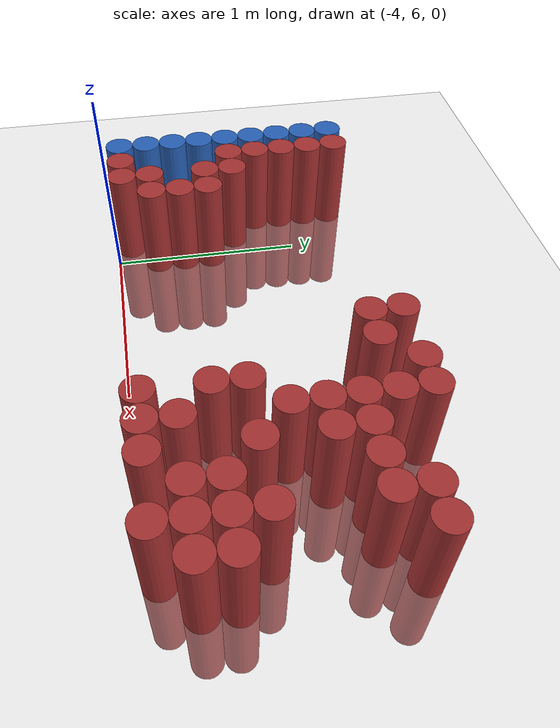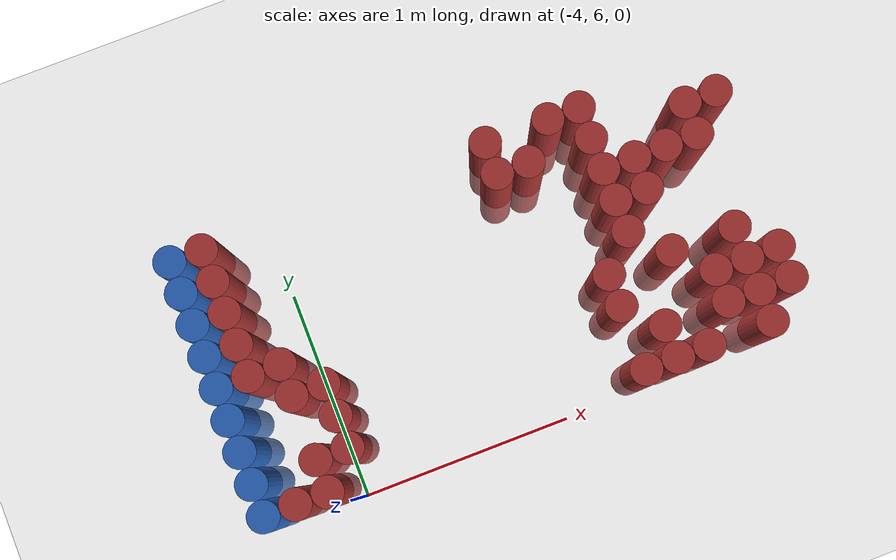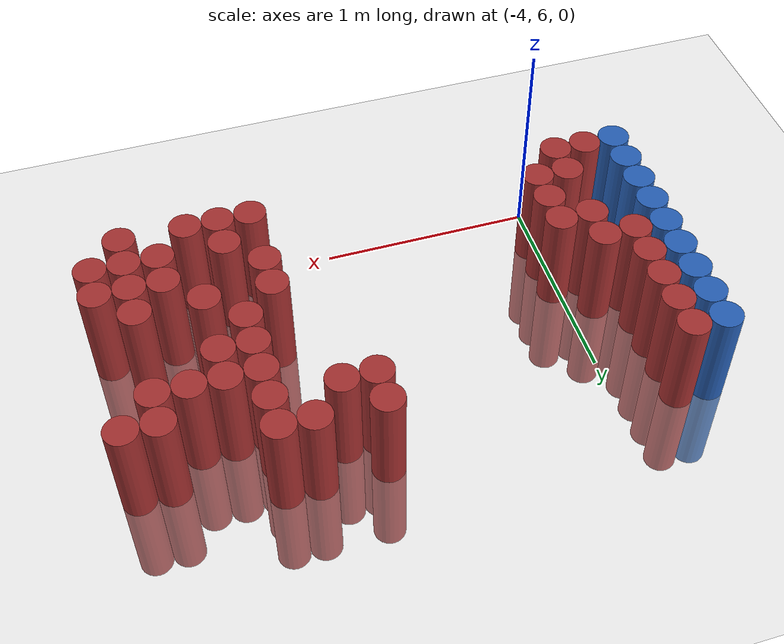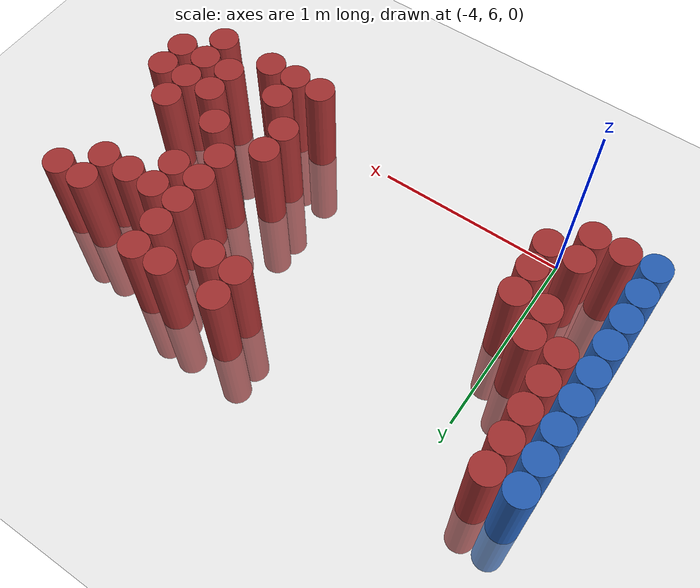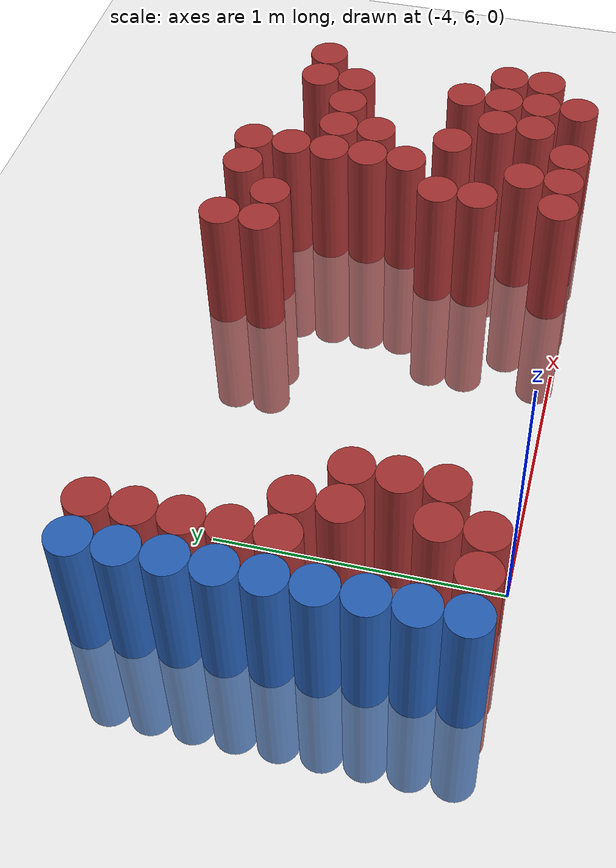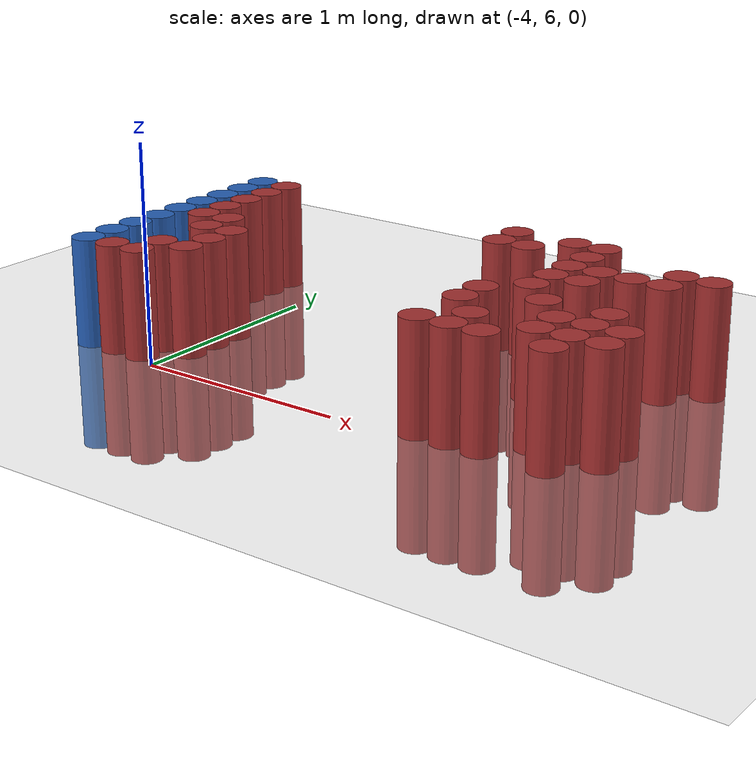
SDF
<sdf version="1.6">
 <world name="default">
  <model name="ground_plane">
   <static>1</static>
   <link name="link">
    <collision name="collision">
     <geometry><plane><normal>0 0 1</normal><size>100 100</size></plane></geometry>
     <surface><friction><ode><mu>100</mu><mu2>50</mu2></ode></friction></surface>
    </collision>
    <visual name="visual">
     <cast_shadows>0</cast_shadows>
     <geometry><plane><normal>0 0 1</normal><size>100 100</size></plane></geometry>
     <material>
      <script><uri>file://media/materials/scripts/gazebo.material</uri><name>Gazebo/Grey</name></script>
     </material>
    </visual>
   </link>
  </model>
  <model name="unit_cylinder_102">
   <static>1</static>
   <pose>-4.425000 6.075000 0.000000 0.000000 0.000000 0.000000</pose>
   <link name="link">
    <inertial>
     <mass>1</mass>
     <inertia><ixx>0.145833</ixx><ixy>0</ixy><ixz>0</ixz><iyy>0.145833</iyy><iyz>0</iyz><izz>0.125</izz></inertia>
    </inertial>
    <collision name="collision">
     <geometry><cylinder><radius>0.075000</radius><length>1</length></cylinder></geometry>
    </collision>
    <visual name="visual">
     <geometry><cylinder><radius>0.075000</radius><length>1</length></cylinder></geometry>
     <material>
      <ambient>0.152000 0.379000 0.720000 1</ambient>
      <diffuse>0.152000 0.379000 0.720000 1</diffuse>
     </material>
     <material>
      <script><name>Gazebo/Grey</name><uri>file://media/materials/scripts/gazebo.material</uri></script>
     </material>
    </visual>
   </link>
  </model>
  <model name="unit_cylinder_103">
   <static>1</static>
   <pose>-4.425000 6.225000 0.000000 0.000000 0.000000 0.000000</pose>
   <link name="link">
    <inertial>
     <mass>1</mass>
     <inertia><ixx>0.145833</ixx><ixy>0</ixy><ixz>0</ixz><iyy>0.145833</iyy><iyz>0</iyz><izz>0.125</izz></inertia>
    </inertial>
    <collision name="collision">
     <geometry><cylinder><radius>0.075000</radius><length>1</length></cylinder></geometry>
    </collision>
    <visual name="visual">
     <geometry><cylinder><radius>0.075000</radius><length>1</length></cylinder></geometry>
     <material>
      <ambient>0.152000 0.379000 0.720000 1</ambient>
      <diffuse>0.152000 0.379000 0.720000 1</diffuse>
     </material>
     <material>
      <script><name>Gazebo/Grey</name><uri>file://media/materials/scripts/gazebo.material</uri></script>
     </material>
    </visual>
   </link>
  </model>
  <model name="unit_cylinder_104">
   <static>1</static>
   <pose>-4.425000 6.375000 0.000000 0.000000 0.000000 0.000000</pose>
   <link name="link">
    <inertial>
     <mass>1</mass>
     <inertia><ixx>0.145833</ixx><ixy>0</ixy><ixz>0</ixz><iyy>0.145833</iyy><iyz>0</iyz><izz>0.125</izz></inertia>
    </inertial>
    <collision name="collision">
     <geometry><cylinder><radius>0.075000</radius><length>1</length></cylinder></geometry>
    </collision>
    <visual name="visual">
     <geometry><cylinder><radius>0.075000</radius><length>1</length></cylinder></geometry>
     <material>
      <ambient>0.152000 0.379000 0.720000 1</ambient>
      <diffuse>0.152000 0.379000 0.720000 1</diffuse>
     </material>
     <material>
      <script><name>Gazebo/Grey</name><uri>file://media/materials/scripts/gazebo.material</uri></script>
     </material>
    </visual>
   </link>
  </model>
  <model name="unit_cylinder_105">
   <static>1</static>
   <pose>-4.425000 6.525000 0.000000 0.000000 0.000000 0.000000</pose>
   <link name="link">
    <inertial>
     <mass>1</mass>
     <inertia><ixx>0.145833</ixx><ixy>0</ixy><ixz>0</ixz><iyy>0.145833</iyy><iyz>0</iyz><izz>0.125</izz></inertia>
    </inertial>
    <collision name="collision">
     <geometry><cylinder><radius>0.075000</radius><length>1</length></cylinder></geometry>
    </collision>
    <visual name="visual">
     <geometry><cylinder><radius>0.075000</radius><length>1</length></cylinder></geometry>
     <material>
      <ambient>0.152000 0.379000 0.720000 1</ambient>
      <diffuse>0.152000 0.379000 0.720000 1</diffuse>
     </material>
     <material>
      <script><name>Gazebo/Grey</name><uri>file://media/materials/scripts/gazebo.material</uri></script>
     </material>
    </visual>
   </link>
  </model>
  <model name="unit_cylinder_106">
   <static>1</static>
   <pose>-4.425000 6.675000 0.000000 0.000000 0.000000 0.000000</pose>
   <link name="link">
    <inertial>
     <mass>1</mass>
     <inertia><ixx>0.145833</ixx><ixy>0</ixy><ixz>0</ixz><iyy>0.145833</iyy><iyz>0</iyz><izz>0.125</izz></inertia>
    </inertial>
    <collision name="collision">
     <geometry><cylinder><radius>0.075000</radius><length>1</length></cylinder></geometry>
    </collision>
    <visual name="visual">
     <geometry><cylinder><radius>0.075000</radius><length>1</length></cylinder></geometry>
     <material>
      <ambient>0.152000 0.379000 0.720000 1</ambient>
      <diffuse>0.152000 0.379000 0.720000 1</diffuse>
     </material>
     <material>
      <script><name>Gazebo/Grey</name><uri>file://media/materials/scripts/gazebo.material</uri></script>
     </material>
    </visual>
   </link>
  </model>
  <model name="unit_cylinder_107">
   <static>1</static>
   <pose>-4.425000 6.825000 0.000000 0.000000 0.000000 0.000000</pose>
   <link name="link">
    <inertial>
     <mass>1</mass>
     <inertia><ixx>0.145833</ixx><ixy>0</ixy><ixz>0</ixz><iyy>0.145833</iyy><iyz>0</iyz><izz>0.125</izz></inertia>
    </inertial>
    <collision name="collision">
     <geometry><cylinder><radius>0.075000</radius><length>1</length></cylinder></geometry>
    </collision>
    <visual name="visual">
     <geometry><cylinder><radius>0.075000</radius><length>1</length></cylinder></geometry>
     <material>
      <ambient>0.152000 0.379000 0.720000 1</ambient>
      <diffuse>0.152000 0.379000 0.720000 1</diffuse>
     </material>
     <material>
      <script><name>Gazebo/Grey</name><uri>file://media/materials/scripts/gazebo.material</uri></script>
     </material>
    </visual>
   </link>
  </model>
  <model name="unit_cylinder_108">
   <static>1</static>
   <pose>-4.425000 6.975000 0.000000 0.000000 0.000000 0.000000</pose>
   <link name="link">
    <inertial>
     <mass>1</mass>
     <inertia><ixx>0.145833</ixx><ixy>0</ixy><ixz>0</ixz><iyy>0.145833</iyy><iyz>0</iyz><izz>0.125</izz></inertia>
    </inertial>
    <collision name="collision">
     <geometry><cylinder><radius>0.075000</radius><length>1</length></cylinder></geometry>
    </collision>
    <visual name="visual">
     <geometry><cylinder><radius>0.075000</radius><length>1</length></cylinder></geometry>
     <material>
      <ambient>0.152000 0.379000 0.720000 1</ambient>
      <diffuse>0.152000 0.379000 0.720000 1</diffuse>
     </material>
     <material>
      <script><name>Gazebo/Grey</name><uri>file://media/materials/scripts/gazebo.material</uri></script>
     </material>
    </visual>
   </link>
  </model>
  <model name="unit_cylinder_109">
   <static>1</static>
   <pose>-4.425000 7.125000 0.000000 0.000000 0.000000 0.000000</pose>
   <link name="link">
    <inertial>
     <mass>1</mass>
     <inertia><ixx>0.145833</ixx><ixy>0</ixy><ixz>0</ixz><iyy>0.145833</iyy><iyz>0</iyz><izz>0.125</izz></inertia>
    </inertial>
    <collision name="collision">
     <geometry><cylinder><radius>0.075000</radius><length>1</length></cylinder></geometry>
    </collision>
    <visual name="visual">
     <geometry><cylinder><radius>0.075000</radius><length>1</length></cylinder></geometry>
     <material>
      <ambient>0.152000 0.379000 0.720000 1</ambient>
      <diffuse>0.152000 0.379000 0.720000 1</diffuse>
     </material>
     <material>
      <script><name>Gazebo/Grey</name><uri>file://media/materials/scripts/gazebo.material</uri></script>
     </material>
    </visual>
   </link>
  </model>
  <model name="unit_cylinder_110">
   <static>1</static>
   <pose>-4.425000 7.275000 0.000000 0.000000 0.000000 0.000000</pose>
   <link name="link">
    <inertial>
     <mass>1</mass>
     <inertia><ixx>0.145833</ixx><ixy>0</ixy><ixz>0</ixz><iyy>0.145833</iyy><iyz>0</iyz><izz>0.125</izz></inertia>
    </inertial>
    <collision name="collision">
     <geometry><cylinder><radius>0.075000</radius><length>1</length></cylinder></geometry>
    </collision>
    <visual name="visual">
     <geometry><cylinder><radius>0.075000</radius><length>1</length></cylinder></geometry>
     <material>
      <ambient>0.152000 0.379000 0.720000 1</ambient>
      <diffuse>0.152000 0.379000 0.720000 1</diffuse>
     </material>
     <material>
      <script><name>Gazebo/Grey</name><uri>file://media/materials/scripts/gazebo.material</uri></script>
     </material>
    </visual>
   </link>
  </model>
  <model name="unit_cylinder_129">
   <static>1</static>
   <pose>-4.275000 6.075000 0.000000 0.000000 0.000000 0.000000</pose>
   <link name="link">
    <inertial>
     <mass>1</mass>
     <inertia><ixx>0.145833</ixx><ixy>0</ixy><ixz>0</ixz><iyy>0.145833</iyy><iyz>0</iyz><izz>0.125</izz></inertia>
    </inertial>
    <collision name="collision">
     <geometry><cylinder><radius>0.075000</radius><length>1</length></cylinder></geometry>
    </collision>
    <visual name="visual">
     <geometry><cylinder><radius>0.075000</radius><length>1</length></cylinder></geometry>
     <material>
      <ambient>0.648000 0.192000 0.192000 1</ambient>
      <diffuse>0.648000 0.192000 0.192000 1</diffuse>
     </material>
     <material>
      <script><name>Gazebo/Grey</name><uri>file://media/materials/scripts/gazebo.material</uri></script>
     </material>
    </visual>
   </link>
  </model>
  <model name="unit_cylinder_130">
   <static>1</static>
   <pose>-4.275000 6.675000 0.000000 0.000000 0.000000 0.000000</pose>
   <link name="link">
    <inertial>
     <mass>1</mass>
     <inertia><ixx>0.145833</ixx><ixy>0</ixy><ixz>0</ixz><iyy>0.145833</iyy><iyz>0</iyz><izz>0.125</izz></inertia>
    </inertial>
    <collision name="collision">
     <geometry><cylinder><radius>0.075000</radius><length>1</length></cylinder></geometry>
    </collision>
    <visual name="visual">
     <geometry><cylinder><radius>0.075000</radius><length>1</length></cylinder></geometry>
     <material>
      <ambient>0.648000 0.192000 0.192000 1</ambient>
      <diffuse>0.648000 0.192000 0.192000 1</diffuse>
     </material>
     <material>
      <script><name>Gazebo/Grey</name><uri>file://media/materials/scripts/gazebo.material</uri></script>
     </material>
    </visual>
   </link>
  </model>
  <model name="unit_cylinder_131">
   <static>1</static>
   <pose>-4.275000 6.825000 0.000000 0.000000 0.000000 0.000000</pose>
   <link name="link">
    <inertial>
     <mass>1</mass>
     <inertia><ixx>0.145833</ixx><ixy>0</ixy><ixz>0</ixz><iyy>0.145833</iyy><iyz>0</iyz><izz>0.125</izz></inertia>
    </inertial>
    <collision name="collision">
     <geometry><cylinder><radius>0.075000</radius><length>1</length></cylinder></geometry>
    </collision>
    <visual name="visual">
     <geometry><cylinder><radius>0.075000</radius><length>1</length></cylinder></geometry>
     <material>
      <ambient>0.648000 0.192000 0.192000 1</ambient>
      <diffuse>0.648000 0.192000 0.192000 1</diffuse>
     </material>
     <material>
      <script><name>Gazebo/Grey</name><uri>file://media/materials/scripts/gazebo.material</uri></script>
     </material>
    </visual>
   </link>
  </model>
  <model name="unit_cylinder_132">
   <static>1</static>
   <pose>-4.275000 6.975000 0.000000 0.000000 0.000000 0.000000</pose>
   <link name="link">
    <inertial>
     <mass>1</mass>
     <inertia><ixx>0.145833</ixx><ixy>0</ixy><ixz>0</ixz><iyy>0.145833</iyy><iyz>0</iyz><izz>0.125</izz></inertia>
    </inertial>
    <collision name="collision">
     <geometry><cylinder><radius>0.075000</radius><length>1</length></cylinder></geometry>
    </collision>
    <visual name="visual">
     <geometry><cylinder><radius>0.075000</radius><length>1</length></cylinder></geometry>
     <material>
      <ambient>0.648000 0.192000 0.192000 1</ambient>
      <diffuse>0.648000 0.192000 0.192000 1</diffuse>
     </material>
     <material>
      <script><name>Gazebo/Grey</name><uri>file://media/materials/scripts/gazebo.material</uri></script>
     </material>
    </visual>
   </link>
  </model>
  <model name="unit_cylinder_133">
   <static>1</static>
   <pose>-4.275000 7.125000 0.000000 0.000000 0.000000 0.000000</pose>
   <link name="link">
    <inertial>
     <mass>1</mass>
     <inertia><ixx>0.145833</ixx><ixy>0</ixy><ixz>0</ixz><iyy>0.145833</iyy><iyz>0</iyz><izz>0.125</izz></inertia>
    </inertial>
    <collision name="collision">
     <geometry><cylinder><radius>0.075000</radius><length>1</length></cylinder></geometry>
    </collision>
    <visual name="visual">
     <geometry><cylinder><radius>0.075000</radius><length>1</length></cylinder></geometry>
     <material>
      <ambient>0.648000 0.192000 0.192000 1</ambient>
      <diffuse>0.648000 0.192000 0.192000 1</diffuse>
     </material>
     <material>
      <script><name>Gazebo/Grey</name><uri>file://media/materials/scripts/gazebo.material</uri></script>
     </material>
    </visual>
   </link>
  </model>
  <model name="unit_cylinder_134">
   <static>1</static>
   <pose>-4.275000 7.275000 0.000000 0.000000 0.000000 0.000000</pose>
   <link name="link">
    <inertial>
     <mass>1</mass>
     <inertia><ixx>0.145833</ixx><ixy>0</ixy><ixz>0</ixz><iyy>0.145833</iyy><iyz>0</iyz><izz>0.125</izz></inertia>
    </inertial>
    <collision name="collision">
     <geometry><cylinder><radius>0.075000</radius><length>1</length></cylinder></geometry>
    </collision>
    <visual name="visual">
     <geometry><cylinder><radius>0.075000</radius><length>1</length></cylinder></geometry>
     <material>
      <ambient>0.648000 0.192000 0.192000 1</ambient>
      <diffuse>0.648000 0.192000 0.192000 1</diffuse>
     </material>
     <material>
      <script><name>Gazebo/Grey</name><uri>file://media/materials/scripts/gazebo.material</uri></script>
     </material>
    </visual>
   </link>
  </model>
  <model name="unit_cylinder_138">
   <static>1</static>
   <pose>-4.125000 6.075000 0.000000 0.000000 0.000000 0.000000</pose>
   <link name="link">
    <inertial>
     <mass>1</mass>
     <inertia><ixx>0.145833</ixx><ixy>0</ixy><ixz>0</ixz><iyy>0.145833</iyy><iyz>0</iyz><izz>0.125</izz></inertia>
    </inertial>
    <collision name="collision">
     <geometry><cylinder><radius>0.075000</radius><length>1</length></cylinder></geometry>
    </collision>
    <visual name="visual">
     <geometry><cylinder><radius>0.075000</radius><length>1</length></cylinder></geometry>
     <material>
      <ambient>0.648000 0.192000 0.192000 1</ambient>
      <diffuse>0.648000 0.192000 0.192000 1</diffuse>
     </material>
     <material>
      <script><name>Gazebo/Grey</name><uri>file://media/materials/scripts/gazebo.material</uri></script>
     </material>
    </visual>
   </link>
  </model>
  <model name="unit_cylinder_139">
   <static>1</static>
   <pose>-4.125000 6.225000 0.000000 0.000000 0.000000 0.000000</pose>
   <link name="link">
    <inertial>
     <mass>1</mass>
     <inertia><ixx>0.145833</ixx><ixy>0</ixy><ixz>0</ixz><iyy>0.145833</iyy><iyz>0</iyz><izz>0.125</izz></inertia>
    </inertial>
    <collision name="collision">
     <geometry><cylinder><radius>0.075000</radius><length>1</length></cylinder></geometry>
    </collision>
    <visual name="visual">
     <geometry><cylinder><radius>0.075000</radius><length>1</length></cylinder></geometry>
     <material>
      <ambient>0.648000 0.192000 0.192000 1</ambient>
      <diffuse>0.648000 0.192000 0.192000 1</diffuse>
     </material>
     <material>
      <script><name>Gazebo/Grey</name><uri>file://media/materials/scripts/gazebo.material</uri></script>
     </material>
    </visual>
   </link>
  </model>
  <model name="unit_cylinder_140">
   <static>1</static>
   <pose>-4.125000 6.525000 0.000000 0.000000 0.000000 0.000000</pose>
   <link name="link">
    <inertial>
     <mass>1</mass>
     <inertia><ixx>0.145833</ixx><ixy>0</ixy><ixz>0</ixz><iyy>0.145833</iyy><iyz>0</iyz><izz>0.125</izz></inertia>
    </inertial>
    <collision name="collision">
     <geometry><cylinder><radius>0.075000</radius><length>1</length></cylinder></geometry>
    </collision>
    <visual name="visual">
     <geometry><cylinder><radius>0.075000</radius><length>1</length></cylinder></geometry>
     <material>
      <ambient>0.648000 0.192000 0.192000 1</ambient>
      <diffuse>0.648000 0.192000 0.192000 1</diffuse>
     </material>
     <material>
      <script><name>Gazebo/Grey</name><uri>file://media/materials/scripts/gazebo.material</uri></script>
     </material>
    </visual>
   </link>
  </model>
  <model name="unit_cylinder_141">
   <static>1</static>
   <pose>-4.125000 6.675000 0.000000 0.000000 0.000000 0.000000</pose>
   <link name="link">
    <inertial>
     <mass>1</mass>
     <inertia><ixx>0.145833</ixx><ixy>0</ixy><ixz>0</ixz><iyy>0.145833</iyy><iyz>0</iyz><izz>0.125</izz></inertia>
    </inertial>
    <collision name="collision">
     <geometry><cylinder><radius>0.075000</radius><length>1</length></cylinder></geometry>
    </collision>
    <visual name="visual">
     <geometry><cylinder><radius>0.075000</radius><length>1</length></cylinder></geometry>
     <material>
      <ambient>0.648000 0.192000 0.192000 1</ambient>
      <diffuse>0.648000 0.192000 0.192000 1</diffuse>
     </material>
     <material>
      <script><name>Gazebo/Grey</name><uri>file://media/materials/scripts/gazebo.material</uri></script>
     </material>
    </visual>
   </link>
  </model>
  <model name="unit_cylinder_144">
   <static>1</static>
   <pose>-3.975000 6.225000 0.000000 0.000000 0.000000 0.000000</pose>
   <link name="link">
    <inertial>
     <mass>1</mass>
     <inertia><ixx>0.145833</ixx><ixy>0</ixy><ixz>0</ixz><iyy>0.145833</iyy><iyz>0</iyz><izz>0.125</izz></inertia>
    </inertial>
    <collision name="collision">
     <geometry><cylinder><radius>0.075000</radius><length>1</length></cylinder></geometry>
    </collision>
    <visual name="visual">
     <geometry><cylinder><radius>0.075000</radius><length>1</length></cylinder></geometry>
     <material>
      <ambient>0.648000 0.192000 0.192000 1</ambient>
      <diffuse>0.648000 0.192000 0.192000 1</diffuse>
     </material>
     <material>
      <script><name>Gazebo/Grey</name><uri>file://media/materials/scripts/gazebo.material</uri></script>
     </material>
    </visual>
   </link>
  </model>
  <model name="unit_cylinder_145">
   <static>1</static>
   <pose>-3.975000 6.375000 0.000000 0.000000 0.000000 0.000000</pose>
   <link name="link">
    <inertial>
     <mass>1</mass>
     <inertia><ixx>0.145833</ixx><ixy>0</ixy><ixz>0</ixz><iyy>0.145833</iyy><iyz>0</iyz><izz>0.125</izz></inertia>
    </inertial>
    <collision name="collision">
     <geometry><cylinder><radius>0.075000</radius><length>1</length></cylinder></geometry>
    </collision>
    <visual name="visual">
     <geometry><cylinder><radius>0.075000</radius><length>1</length></cylinder></geometry>
     <material>
      <ambient>0.648000 0.192000 0.192000 1</ambient>
      <diffuse>0.648000 0.192000 0.192000 1</diffuse>
     </material>
     <material>
      <script><name>Gazebo/Grey</name><uri>file://media/materials/scripts/gazebo.material</uri></script>
     </material>
    </visual>
   </link>
  </model>
  <model name="unit_cylinder_146">
   <static>1</static>
   <pose>-3.975000 6.525000 0.000000 0.000000 0.000000 0.000000</pose>
   <link name="link">
    <inertial>
     <mass>1</mass>
     <inertia><ixx>0.145833</ixx><ixy>0</ixy><ixz>0</ixz><iyy>0.145833</iyy><iyz>0</iyz><izz>0.125</izz></inertia>
    </inertial>
    <collision name="collision">
     <geometry><cylinder><radius>0.075000</radius><length>1</length></cylinder></geometry>
    </collision>
    <visual name="visual">
     <geometry><cylinder><radius>0.075000</radius><length>1</length></cylinder></geometry>
     <material>
      <ambient>0.648000 0.192000 0.192000 1</ambient>
      <diffuse>0.648000 0.192000 0.192000 1</diffuse>
     </material>
     <material>
      <script><name>Gazebo/Grey</name><uri>file://media/materials/scripts/gazebo.material</uri></script>
     </material>
    </visual>
   </link>
  </model>
  <model name="unit_cylinder_164">
   <static>1</static>
   <pose>-2.925000 7.125000 0.000000 0.000000 0.000000 0.000000</pose>
   <link name="link">
    <inertial>
     <mass>1</mass>
     <inertia><ixx>0.145833</ixx><ixy>0</ixy><ixz>0</ixz><iyy>0.145833</iyy><iyz>0</iyz><izz>0.125</izz></inertia>
    </inertial>
    <collision name="collision">
     <geometry><cylinder><radius>0.075000</radius><length>1</length></cylinder></geometry>
    </collision>
    <visual name="visual">
     <geometry><cylinder><radius>0.075000</radius><length>1</length></cylinder></geometry>
     <material>
      <ambient>0.648000 0.192000 0.192000 1</ambient>
      <diffuse>0.648000 0.192000 0.192000 1</diffuse>
     </material>
     <material>
      <script><name>Gazebo/Grey</name><uri>file://media/materials/scripts/gazebo.material</uri></script>
     </material>
    </visual>
   </link>
  </model>
  <model name="unit_cylinder_165">
   <static>1</static>
   <pose>-2.925000 7.275000 0.000000 0.000000 0.000000 0.000000</pose>
   <link name="link">
    <inertial>
     <mass>1</mass>
     <inertia><ixx>0.145833</ixx><ixy>0</ixy><ixz>0</ixz><iyy>0.145833</iyy><iyz>0</iyz><izz>0.125</izz></inertia>
    </inertial>
    <collision name="collision">
     <geometry><cylinder><radius>0.075000</radius><length>1</length></cylinder></geometry>
    </collision>
    <visual name="visual">
     <geometry><cylinder><radius>0.075000</radius><length>1</length></cylinder></geometry>
     <material>
      <ambient>0.648000 0.192000 0.192000 1</ambient>
      <diffuse>0.648000 0.192000 0.192000 1</diffuse>
     </material>
     <material>
      <script><name>Gazebo/Grey</name><uri>file://media/materials/scripts/gazebo.material</uri></script>
     </material>
    </visual>
   </link>
  </model>
  <model name="unit_cylinder_170">
   <static>1</static>
   <pose>-2.775000 7.125000 0.000000 0.000000 0.000000 0.000000</pose>
   <link name="link">
    <inertial>
     <mass>1</mass>
     <inertia><ixx>0.145833</ixx><ixy>0</ixy><ixz>0</ixz><iyy>0.145833</iyy><iyz>0</iyz><izz>0.125</izz></inertia>
    </inertial>
    <collision name="collision">
     <geometry><cylinder><radius>0.075000</radius><length>1</length></cylinder></geometry>
    </collision>
    <visual name="visual">
     <geometry><cylinder><radius>0.075000</radius><length>1</length></cylinder></geometry>
     <material>
      <ambient>0.648000 0.192000 0.192000 1</ambient>
      <diffuse>0.648000 0.192000 0.192000 1</diffuse>
     </material>
     <material>
      <script><name>Gazebo/Grey</name><uri>file://media/materials/scripts/gazebo.material</uri></script>
     </material>
    </visual>
   </link>
  </model>
  <model name="unit_cylinder_174">
   <static>1</static>
   <pose>-2.625000 6.075000 0.000000 0.000000 0.000000 0.000000</pose>
   <link name="link">
    <inertial>
     <mass>1</mass>
     <inertia><ixx>0.145833</ixx><ixy>0</ixy><ixz>0</ixz><iyy>0.145833</iyy><iyz>0</iyz><izz>0.125</izz></inertia>
    </inertial>
    <collision name="collision">
     <geometry><cylinder><radius>0.075000</radius><length>1</length></cylinder></geometry>
    </collision>
    <visual name="visual">
     <geometry><cylinder><radius>0.075000</radius><length>1</length></cylinder></geometry>
     <material>
      <ambient>0.648000 0.192000 0.192000 1</ambient>
      <diffuse>0.648000 0.192000 0.192000 1</diffuse>
     </material>
     <material>
      <script><name>Gazebo/Grey</name><uri>file://media/materials/scripts/gazebo.material</uri></script>
     </material>
    </visual>
   </link>
  </model>
  <model name="unit_cylinder_175">
   <static>1</static>
   <pose>-2.625000 6.375000 0.000000 0.000000 0.000000 0.000000</pose>
   <link name="link">
    <inertial>
     <mass>1</mass>
     <inertia><ixx>0.145833</ixx><ixy>0</ixy><ixz>0</ixz><iyy>0.145833</iyy><iyz>0</iyz><izz>0.125</izz></inertia>
    </inertial>
    <collision name="collision">
     <geometry><cylinder><radius>0.075000</radius><length>1</length></cylinder></geometry>
    </collision>
    <visual name="visual">
     <geometry><cylinder><radius>0.075000</radius><length>1</length></cylinder></geometry>
     <material>
      <ambient>0.648000 0.192000 0.192000 1</ambient>
      <diffuse>0.648000 0.192000 0.192000 1</diffuse>
     </material>
     <material>
      <script><name>Gazebo/Grey</name><uri>file://media/materials/scripts/gazebo.material</uri></script>
     </material>
    </visual>
   </link>
  </model>
  <model name="unit_cylinder_176">
   <static>1</static>
   <pose>-2.625000 6.525000 0.000000 0.000000 0.000000 0.000000</pose>
   <link name="link">
    <inertial>
     <mass>1</mass>
     <inertia><ixx>0.145833</ixx><ixy>0</ixy><ixz>0</ixz><iyy>0.145833</iyy><iyz>0</iyz><izz>0.125</izz></inertia>
    </inertial>
    <collision name="collision">
     <geometry><cylinder><radius>0.075000</radius><length>1</length></cylinder></geometry>
    </collision>
    <visual name="visual">
     <geometry><cylinder><radius>0.075000</radius><length>1</length></cylinder></geometry>
     <material>
      <ambient>0.648000 0.192000 0.192000 1</ambient>
      <diffuse>0.648000 0.192000 0.192000 1</diffuse>
     </material>
     <material>
      <script><name>Gazebo/Grey</name><uri>file://media/materials/scripts/gazebo.material</uri></script>
     </material>
    </visual>
   </link>
  </model>
  <model name="unit_cylinder_177">
   <static>1</static>
   <pose>-2.625000 7.275000 0.000000 0.000000 0.000000 0.000000</pose>
   <link name="link">
    <inertial>
     <mass>1</mass>
     <inertia><ixx>0.145833</ixx><ixy>0</ixy><ixz>0</ixz><iyy>0.145833</iyy><iyz>0</iyz><izz>0.125</izz></inertia>
    </inertial>
    <collision name="collision">
     <geometry><cylinder><radius>0.075000</radius><length>1</length></cylinder></geometry>
    </collision>
    <visual name="visual">
     <geometry><cylinder><radius>0.075000</radius><length>1</length></cylinder></geometry>
     <material>
      <ambient>0.648000 0.192000 0.192000 1</ambient>
      <diffuse>0.648000 0.192000 0.192000 1</diffuse>
     </material>
     <material>
      <script><name>Gazebo/Grey</name><uri>file://media/materials/scripts/gazebo.material</uri></script>
     </material>
    </visual>
   </link>
  </model>
  <model name="unit_cylinder_181">
   <static>1</static>
   <pose>-2.475000 6.075000 0.000000 0.000000 0.000000 0.000000</pose>
   <link name="link">
    <inertial>
     <mass>1</mass>
     <inertia><ixx>0.145833</ixx><ixy>0</ixy><ixz>0</ixz><iyy>0.145833</iyy><iyz>0</iyz><izz>0.125</izz></inertia>
    </inertial>
    <collision name="collision">
     <geometry><cylinder><radius>0.075000</radius><length>1</length></cylinder></geometry>
    </collision>
    <visual name="visual">
     <geometry><cylinder><radius>0.075000</radius><length>1</length></cylinder></geometry>
     <material>
      <ambient>0.648000 0.192000 0.192000 1</ambient>
      <diffuse>0.648000 0.192000 0.192000 1</diffuse>
     </material>
     <material>
      <script><name>Gazebo/Grey</name><uri>file://media/materials/scripts/gazebo.material</uri></script>
     </material>
    </visual>
   </link>
  </model>
  <model name="unit_cylinder_182">
   <static>1</static>
   <pose>-2.475000 6.225000 0.000000 0.000000 0.000000 0.000000</pose>
   <link name="link">
    <inertial>
     <mass>1</mass>
     <inertia><ixx>0.145833</ixx><ixy>0</ixy><ixz>0</ixz><iyy>0.145833</iyy><iyz>0</iyz><izz>0.125</izz></inertia>
    </inertial>
    <collision name="collision">
     <geometry><cylinder><radius>0.075000</radius><length>1</length></cylinder></geometry>
    </collision>
    <visual name="visual">
     <geometry><cylinder><radius>0.075000</radius><length>1</length></cylinder></geometry>
     <material>
      <ambient>0.648000 0.192000 0.192000 1</ambient>
      <diffuse>0.648000 0.192000 0.192000 1</diffuse>
     </material>
     <material>
      <script><name>Gazebo/Grey</name><uri>file://media/materials/scripts/gazebo.material</uri></script>
     </material>
    </visual>
   </link>
  </model>
  <model name="unit_cylinder_183">
   <static>1</static>
   <pose>-2.475000 6.675000 0.000000 0.000000 0.000000 0.000000</pose>
   <link name="link">
    <inertial>
     <mass>1</mass>
     <inertia><ixx>0.145833</ixx><ixy>0</ixy><ixz>0</ixz><iyy>0.145833</iyy><iyz>0</iyz><izz>0.125</izz></inertia>
    </inertial>
    <collision name="collision">
     <geometry><cylinder><radius>0.075000</radius><length>1</length></cylinder></geometry>
    </collision>
    <visual name="visual">
     <geometry><cylinder><radius>0.075000</radius><length>1</length></cylinder></geometry>
     <material>
      <ambient>0.648000 0.192000 0.192000 1</ambient>
      <diffuse>0.648000 0.192000 0.192000 1</diffuse>
     </material>
     <material>
      <script><name>Gazebo/Grey</name><uri>file://media/materials/scripts/gazebo.material</uri></script>
     </material>
    </visual>
   </link>
  </model>
  <model name="unit_cylinder_184">
   <static>1</static>
   <pose>-2.475000 6.825000 0.000000 0.000000 0.000000 0.000000</pose>
   <link name="link">
    <inertial>
     <mass>1</mass>
     <inertia><ixx>0.145833</ixx><ixy>0</ixy><ixz>0</ixz><iyy>0.145833</iyy><iyz>0</iyz><izz>0.125</izz></inertia>
    </inertial>
    <collision name="collision">
     <geometry><cylinder><radius>0.075000</radius><length>1</length></cylinder></geometry>
    </collision>
    <visual name="visual">
     <geometry><cylinder><radius>0.075000</radius><length>1</length></cylinder></geometry>
     <material>
      <ambient>0.648000 0.192000 0.192000 1</ambient>
      <diffuse>0.648000 0.192000 0.192000 1</diffuse>
     </material>
     <material>
      <script><name>Gazebo/Grey</name><uri>file://media/materials/scripts/gazebo.material</uri></script>
     </material>
    </visual>
   </link>
  </model>
  <model name="unit_cylinder_185">
   <static>1</static>
   <pose>-2.475000 6.975000 0.000000 0.000000 0.000000 0.000000</pose>
   <link name="link">
    <inertial>
     <mass>1</mass>
     <inertia><ixx>0.145833</ixx><ixy>0</ixy><ixz>0</ixz><iyy>0.145833</iyy><iyz>0</iyz><izz>0.125</izz></inertia>
    </inertial>
    <collision name="collision">
     <geometry><cylinder><radius>0.075000</radius><length>1</length></cylinder></geometry>
    </collision>
    <visual name="visual">
     <geometry><cylinder><radius>0.075000</radius><length>1</length></cylinder></geometry>
     <material>
      <ambient>0.648000 0.192000 0.192000 1</ambient>
      <diffuse>0.648000 0.192000 0.192000 1</diffuse>
     </material>
     <material>
      <script><name>Gazebo/Grey</name><uri>file://media/materials/scripts/gazebo.material</uri></script>
     </material>
    </visual>
   </link>
  </model>
  <model name="unit_cylinder_186">
   <static>1</static>
   <pose>-2.475000 7.125000 0.000000 0.000000 0.000000 0.000000</pose>
   <link name="link">
    <inertial>
     <mass>1</mass>
     <inertia><ixx>0.145833</ixx><ixy>0</ixy><ixz>0</ixz><iyy>0.145833</iyy><iyz>0</iyz><izz>0.125</izz></inertia>
    </inertial>
    <collision name="collision">
     <geometry><cylinder><radius>0.075000</radius><length>1</length></cylinder></geometry>
    </collision>
    <visual name="visual">
     <geometry><cylinder><radius>0.075000</radius><length>1</length></cylinder></geometry>
     <material>
      <ambient>0.648000 0.192000 0.192000 1</ambient>
      <diffuse>0.648000 0.192000 0.192000 1</diffuse>
     </material>
     <material>
      <script><name>Gazebo/Grey</name><uri>file://media/materials/scripts/gazebo.material</uri></script>
     </material>
    </visual>
   </link>
  </model>
  <model name="unit_cylinder_187">
   <static>1</static>
   <pose>-2.475000 7.275000 0.000000 0.000000 0.000000 0.000000</pose>
   <link name="link">
    <inertial>
     <mass>1</mass>
     <inertia><ixx>0.145833</ixx><ixy>0</ixy><ixz>0</ixz><iyy>0.145833</iyy><iyz>0</iyz><izz>0.125</izz></inertia>
    </inertial>
    <collision name="collision">
     <geometry><cylinder><radius>0.075000</radius><length>1</length></cylinder></geometry>
    </collision>
    <visual name="visual">
     <geometry><cylinder><radius>0.075000</radius><length>1</length></cylinder></geometry>
     <material>
      <ambient>0.648000 0.192000 0.192000 1</ambient>
      <diffuse>0.648000 0.192000 0.192000 1</diffuse>
     </material>
     <material>
      <script><name>Gazebo/Grey</name><uri>file://media/materials/scripts/gazebo.material</uri></script>
     </material>
    </visual>
   </link>
  </model>
  <model name="unit_cylinder_192">
   <static>1</static>
   <pose>-2.325000 6.075000 0.000000 0.000000 0.000000 0.000000</pose>
   <link name="link">
    <inertial>
     <mass>1</mass>
     <inertia><ixx>0.145833</ixx><ixy>0</ixy><ixz>0</ixz><iyy>0.145833</iyy><iyz>0</iyz><izz>0.125</izz></inertia>
    </inertial>
    <collision name="collision">
     <geometry><cylinder><radius>0.075000</radius><length>1</length></cylinder></geometry>
    </collision>
    <visual name="visual">
     <geometry><cylinder><radius>0.075000</radius><length>1</length></cylinder></geometry>
     <material>
      <ambient>0.648000 0.192000 0.192000 1</ambient>
      <diffuse>0.648000 0.192000 0.192000 1</diffuse>
     </material>
     <material>
      <script><name>Gazebo/Grey</name><uri>file://media/materials/scripts/gazebo.material</uri></script>
     </material>
    </visual>
   </link>
  </model>
  <model name="unit_cylinder_193">
   <static>1</static>
   <pose>-2.325000 6.525000 0.000000 0.000000 0.000000 0.000000</pose>
   <link name="link">
    <inertial>
     <mass>1</mass>
     <inertia><ixx>0.145833</ixx><ixy>0</ixy><ixz>0</ixz><iyy>0.145833</iyy><iyz>0</iyz><izz>0.125</izz></inertia>
    </inertial>
    <collision name="collision">
     <geometry><cylinder><radius>0.075000</radius><length>1</length></cylinder></geometry>
    </collision>
    <visual name="visual">
     <geometry><cylinder><radius>0.075000</radius><length>1</length></cylinder></geometry>
     <material>
      <ambient>0.648000 0.192000 0.192000 1</ambient>
      <diffuse>0.648000 0.192000 0.192000 1</diffuse>
     </material>
     <material>
      <script><name>Gazebo/Grey</name><uri>file://media/materials/scripts/gazebo.material</uri></script>
     </material>
    </visual>
   </link>
  </model>
  <model name="unit_cylinder_194">
   <static>1</static>
   <pose>-2.325000 6.825000 0.000000 0.000000 0.000000 0.000000</pose>
   <link name="link">
    <inertial>
     <mass>1</mass>
     <inertia><ixx>0.145833</ixx><ixy>0</ixy><ixz>0</ixz><iyy>0.145833</iyy><iyz>0</iyz><izz>0.125</izz></inertia>
    </inertial>
    <collision name="collision">
     <geometry><cylinder><radius>0.075000</radius><length>1</length></cylinder></geometry>
    </collision>
    <visual name="visual">
     <geometry><cylinder><radius>0.075000</radius><length>1</length></cylinder></geometry>
     <material>
      <ambient>0.648000 0.192000 0.192000 1</ambient>
      <diffuse>0.648000 0.192000 0.192000 1</diffuse>
     </material>
     <material>
      <script><name>Gazebo/Grey</name><uri>file://media/materials/scripts/gazebo.material</uri></script>
     </material>
    </visual>
   </link>
  </model>
  <model name="unit_cylinder_195">
   <static>1</static>
   <pose>-2.325000 6.975000 0.000000 0.000000 0.000000 0.000000</pose>
   <link name="link">
    <inertial>
     <mass>1</mass>
     <inertia><ixx>0.145833</ixx><ixy>0</ixy><ixz>0</ixz><iyy>0.145833</iyy><iyz>0</iyz><izz>0.125</izz></inertia>
    </inertial>
    <collision name="collision">
     <geometry><cylinder><radius>0.075000</radius><length>1</length></cylinder></geometry>
    </collision>
    <visual name="visual">
     <geometry><cylinder><radius>0.075000</radius><length>1</length></cylinder></geometry>
     <material>
      <ambient>0.648000 0.192000 0.192000 1</ambient>
      <diffuse>0.648000 0.192000 0.192000 1</diffuse>
     </material>
     <material>
      <script><name>Gazebo/Grey</name><uri>file://media/materials/scripts/gazebo.material</uri></script>
     </material>
    </visual>
   </link>
  </model>
  <model name="unit_cylinder_201">
   <static>1</static>
   <pose>-2.175000 6.225000 0.000000 0.000000 0.000000 0.000000</pose>
   <link name="link">
    <inertial>
     <mass>1</mass>
     <inertia><ixx>0.145833</ixx><ixy>0</ixy><ixz>0</ixz><iyy>0.145833</iyy><iyz>0</iyz><izz>0.125</izz></inertia>
    </inertial>
    <collision name="collision">
     <geometry><cylinder><radius>0.075000</radius><length>1</length></cylinder></geometry>
    </collision>
    <visual name="visual">
     <geometry><cylinder><radius>0.075000</radius><length>1</length></cylinder></geometry>
     <material>
      <ambient>0.648000 0.192000 0.192000 1</ambient>
      <diffuse>0.648000 0.192000 0.192000 1</diffuse>
     </material>
     <material>
      <script><name>Gazebo/Grey</name><uri>file://media/materials/scripts/gazebo.material</uri></script>
     </material>
    </visual>
   </link>
  </model>
  <model name="unit_cylinder_202">
   <static>1</static>
   <pose>-2.175000 6.375000 0.000000 0.000000 0.000000 0.000000</pose>
   <link name="link">
    <inertial>
     <mass>1</mass>
     <inertia><ixx>0.145833</ixx><ixy>0</ixy><ixz>0</ixz><iyy>0.145833</iyy><iyz>0</iyz><izz>0.125</izz></inertia>
    </inertial>
    <collision name="collision">
     <geometry><cylinder><radius>0.075000</radius><length>1</length></cylinder></geometry>
    </collision>
    <visual name="visual">
     <geometry><cylinder><radius>0.075000</radius><length>1</length></cylinder></geometry>
     <material>
      <ambient>0.648000 0.192000 0.192000 1</ambient>
      <diffuse>0.648000 0.192000 0.192000 1</diffuse>
     </material>
     <material>
      <script><name>Gazebo/Grey</name><uri>file://media/materials/scripts/gazebo.material</uri></script>
     </material>
    </visual>
   </link>
  </model>
  <model name="unit_cylinder_203">
   <static>1</static>
   <pose>-2.175000 6.975000 0.000000 0.000000 0.000000 0.000000</pose>
   <link name="link">
    <inertial>
     <mass>1</mass>
     <inertia><ixx>0.145833</ixx><ixy>0</ixy><ixz>0</ixz><iyy>0.145833</iyy><iyz>0</iyz><izz>0.125</izz></inertia>
    </inertial>
    <collision name="collision">
     <geometry><cylinder><radius>0.075000</radius><length>1</length></cylinder></geometry>
    </collision>
    <visual name="visual">
     <geometry><cylinder><radius>0.075000</radius><length>1</length></cylinder></geometry>
     <material>
      <ambient>0.648000 0.192000 0.192000 1</ambient>
      <diffuse>0.648000 0.192000 0.192000 1</diffuse>
     </material>
     <material>
      <script><name>Gazebo/Grey</name><uri>file://media/materials/scripts/gazebo.material</uri></script>
     </material>
    </visual>
   </link>
  </model>
  <model name="unit_cylinder_214">
   <static>1</static>
   <pose>-2.025000 6.075000 0.000000 0.000000 0.000000 0.000000</pose>
   <link name="link">
    <inertial>
     <mass>1</mass>
     <inertia><ixx>0.145833</ixx><ixy>0</ixy><ixz>0</ixz><iyy>0.145833</iyy><iyz>0</iyz><izz>0.125</izz></inertia>
    </inertial>
    <collision name="collision">
     <geometry><cylinder><radius>0.075000</radius><length>1</length></cylinder></geometry>
    </collision>
    <visual name="visual">
     <geometry><cylinder><radius>0.075000</radius><length>1</length></cylinder></geometry>
     <material>
      <ambient>0.648000 0.192000 0.192000 1</ambient>
      <diffuse>0.648000 0.192000 0.192000 1</diffuse>
     </material>
     <material>
      <script><name>Gazebo/Grey</name><uri>file://media/materials/scripts/gazebo.material</uri></script>
     </material>
    </visual>
   </link>
  </model>
  <model name="unit_cylinder_215">
   <static>1</static>
   <pose>-2.025000 6.225000 0.000000 0.000000 0.000000 0.000000</pose>
   <link name="link">
    <inertial>
     <mass>1</mass>
     <inertia><ixx>0.145833</ixx><ixy>0</ixy><ixz>0</ixz><iyy>0.145833</iyy><iyz>0</iyz><izz>0.125</izz></inertia>
    </inertial>
    <collision name="collision">
     <geometry><cylinder><radius>0.075000</radius><length>1</length></cylinder></geometry>
    </collision>
    <visual name="visual">
     <geometry><cylinder><radius>0.075000</radius><length>1</length></cylinder></geometry>
     <material>
      <ambient>0.648000 0.192000 0.192000 1</ambient>
      <diffuse>0.648000 0.192000 0.192000 1</diffuse>
     </material>
     <material>
      <script><name>Gazebo/Grey</name><uri>file://media/materials/scripts/gazebo.material</uri></script>
     </material>
    </visual>
   </link>
  </model>
  <model name="unit_cylinder_216">
   <static>1</static>
   <pose>-2.025000 6.375000 0.000000 0.000000 0.000000 0.000000</pose>
   <link name="link">
    <inertial>
     <mass>1</mass>
     <inertia><ixx>0.145833</ixx><ixy>0</ixy><ixz>0</ixz><iyy>0.145833</iyy><iyz>0</iyz><izz>0.125</izz></inertia>
    </inertial>
    <collision name="collision">
     <geometry><cylinder><radius>0.075000</radius><length>1</length></cylinder></geometry>
    </collision>
    <visual name="visual">
     <geometry><cylinder><radius>0.075000</radius><length>1</length></cylinder></geometry>
     <material>
      <ambient>0.648000 0.192000 0.192000 1</ambient>
      <diffuse>0.648000 0.192000 0.192000 1</diffuse>
     </material>
     <material>
      <script><name>Gazebo/Grey</name><uri>file://media/materials/scripts/gazebo.material</uri></script>
     </material>
    </visual>
   </link>
  </model>
  <model name="unit_cylinder_217">
   <static>1</static>
   <pose>-2.025000 6.525000 0.000000 0.000000 0.000000 0.000000</pose>
   <link name="link">
    <inertial>
     <mass>1</mass>
     <inertia><ixx>0.145833</ixx><ixy>0</ixy><ixz>0</ixz><iyy>0.145833</iyy><iyz>0</iyz><izz>0.125</izz></inertia>
    </inertial>
    <collision name="collision">
     <geometry><cylinder><radius>0.075000</radius><length>1</length></cylinder></geometry>
    </collision>
    <visual name="visual">
     <geometry><cylinder><radius>0.075000</radius><length>1</length></cylinder></geometry>
     <material>
      <ambient>0.648000 0.192000 0.192000 1</ambient>
      <diffuse>0.648000 0.192000 0.192000 1</diffuse>
     </material>
     <material>
      <script><name>Gazebo/Grey</name><uri>file://media/materials/scripts/gazebo.material</uri></script>
     </material>
    </visual>
   </link>
  </model>
  <model name="unit_cylinder_218">
   <static>1</static>
   <pose>-2.025000 6.975000 0.000000 0.000000 0.000000 0.000000</pose>
   <link name="link">
    <inertial>
     <mass>1</mass>
     <inertia><ixx>0.145833</ixx><ixy>0</ixy><ixz>0</ixz><iyy>0.145833</iyy><iyz>0</iyz><izz>0.125</izz></inertia>
    </inertial>
    <collision name="collision">
     <geometry><cylinder><radius>0.075000</radius><length>1</length></cylinder></geometry>
    </collision>
    <visual name="visual">
     <geometry><cylinder><radius>0.075000</radius><length>1</length></cylinder></geometry>
     <material>
      <ambient>0.648000 0.192000 0.192000 1</ambient>
      <diffuse>0.648000 0.192000 0.192000 1</diffuse>
     </material>
     <material>
      <script><name>Gazebo/Grey</name><uri>file://media/materials/scripts/gazebo.material</uri></script>
     </material>
    </visual>
   </link>
  </model>
  <model name="unit_cylinder_219">
   <static>1</static>
   <pose>-2.025000 7.125000 0.000000 0.000000 0.000000 0.000000</pose>
   <link name="link">
    <inertial>
     <mass>1</mass>
     <inertia><ixx>0.145833</ixx><ixy>0</ixy><ixz>0</ixz><iyy>0.145833</iyy><iyz>0</iyz><izz>0.125</izz></inertia>
    </inertial>
    <collision name="collision">
     <geometry><cylinder><radius>0.075000</radius><length>1</length></cylinder></geometry>
    </collision>
    <visual name="visual">
     <geometry><cylinder><radius>0.075000</radius><length>1</length></cylinder></geometry>
     <material>
      <ambient>0.648000 0.192000 0.192000 1</ambient>
      <diffuse>0.648000 0.192000 0.192000 1</diffuse>
     </material>
     <material>
      <script><name>Gazebo/Grey</name><uri>file://media/materials/scripts/gazebo.material</uri></script>
     </material>
    </visual>
   </link>
  </model>
  <model name="unit_cylinder_226">
   <static>1</static>
   <pose>-1.875000 6.225000 0.000000 0.000000 0.000000 0.000000</pose>
   <link name="link">
    <inertial>
     <mass>1</mass>
     <inertia><ixx>0.145833</ixx><ixy>0</ixy><ixz>0</ixz><iyy>0.145833</iyy><iyz>0</iyz><izz>0.125</izz></inertia>
    </inertial>
    <collision name="collision">
     <geometry><cylinder><radius>0.075000</radius><length>1</length></cylinder></geometry>
    </collision>
    <visual name="visual">
     <geometry><cylinder><radius>0.075000</radius><length>1</length></cylinder></geometry>
     <material>
      <ambient>0.648000 0.192000 0.192000 1</ambient>
      <diffuse>0.648000 0.192000 0.192000 1</diffuse>
     </material>
     <material>
      <script><name>Gazebo/Grey</name><uri>file://media/materials/scripts/gazebo.material</uri></script>
     </material>
    </visual>
   </link>
  </model>
  <model name="unit_cylinder_227">
   <static>1</static>
   <pose>-1.875000 6.375000 0.000000 0.000000 0.000000 0.000000</pose>
   <link name="link">
    <inertial>
     <mass>1</mass>
     <inertia><ixx>0.145833</ixx><ixy>0</ixy><ixz>0</ixz><iyy>0.145833</iyy><iyz>0</iyz><izz>0.125</izz></inertia>
    </inertial>
    <collision name="collision">
     <geometry><cylinder><radius>0.075000</radius><length>1</length></cylinder></geometry>
    </collision>
    <visual name="visual">
     <geometry><cylinder><radius>0.075000</radius><length>1</length></cylinder></geometry>
     <material>
      <ambient>0.648000 0.192000 0.192000 1</ambient>
      <diffuse>0.648000 0.192000 0.192000 1</diffuse>
     </material>
     <material>
      <script><name>Gazebo/Grey</name><uri>file://media/materials/scripts/gazebo.material</uri></script>
     </material>
    </visual>
   </link>
  </model>
  <model name="unit_cylinder_228">
   <static>1</static>
   <pose>-1.875000 7.125000 0.000000 0.000000 0.000000 0.000000</pose>
   <link name="link">
    <inertial>
     <mass>1</mass>
     <inertia><ixx>0.145833</ixx><ixy>0</ixy><ixz>0</ixz><iyy>0.145833</iyy><iyz>0</iyz><izz>0.125</izz></inertia>
    </inertial>
    <collision name="collision">
     <geometry><cylinder><radius>0.075000</radius><length>1</length></cylinder></geometry>
    </collision>
    <visual name="visual">
     <geometry><cylinder><radius>0.075000</radius><length>1</length></cylinder></geometry>
     <material>
      <ambient>0.648000 0.192000 0.192000 1</ambient>
      <diffuse>0.648000 0.192000 0.192000 1</diffuse>
     </material>
     <material>
      <script><name>Gazebo/Grey</name><uri>file://media/materials/scripts/gazebo.material</uri></script>
     </material>
    </visual>
   </link>
  </model>
 </world>
</sdf>
